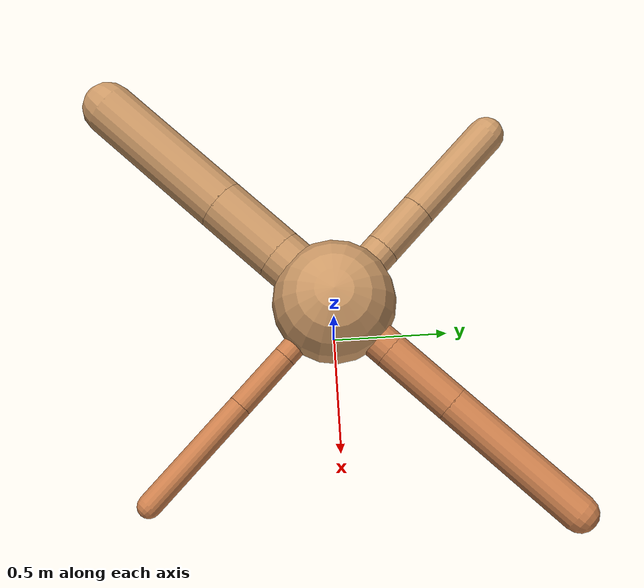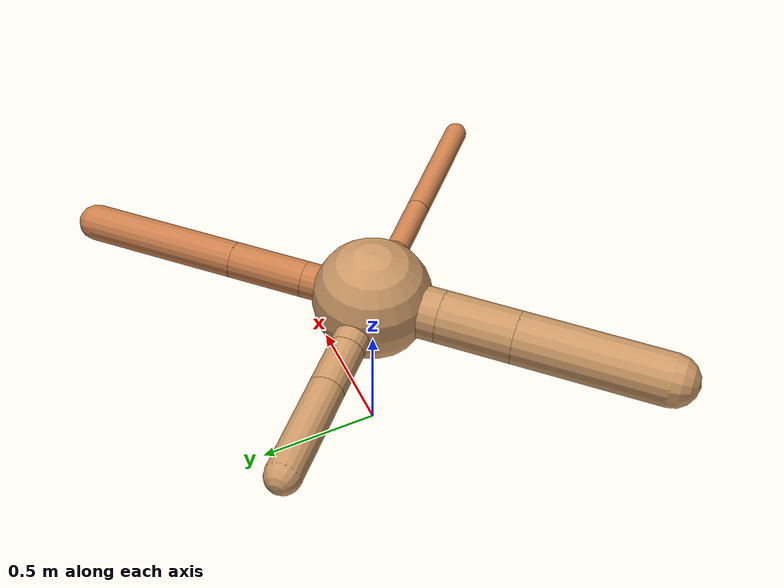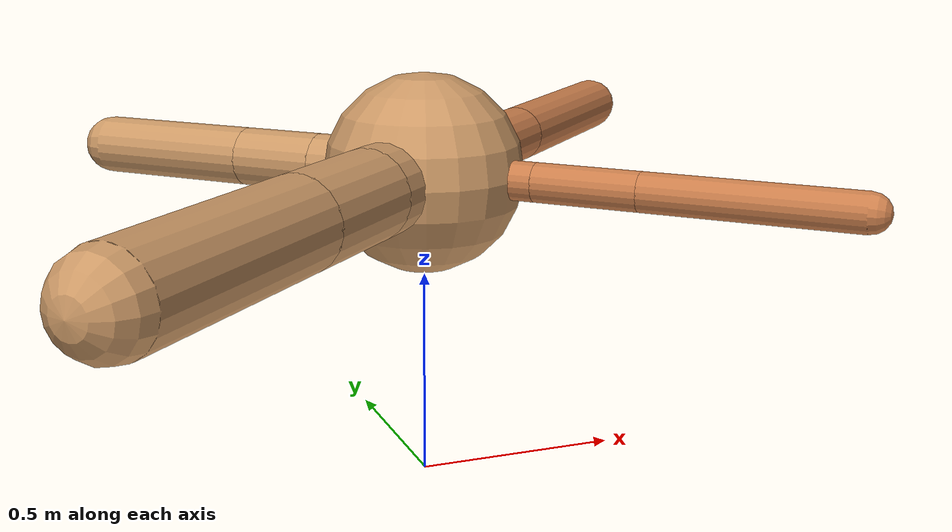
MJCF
<?xml version="1.0" ?>
<mujoco model="ant">

	<compiler angle="degree" coordinate="local" inertiafromgeom="true"/>

	<option integrator="RK4" timestep="0.01"/>

	<custom>

		<numeric data="0.0 0.0 0.55 1.0 0.0 0.0 0.0 0.0 1.0 0.0 -1.0 0.0 -1.0 0.0 1.0" name="init_qpos"/>

	</custom>

	<default>

		<joint armature="1" damping="1" limited="true"/>

		<geom conaffinity="0" condim="3" density="5.0" friction="1.5 0.1 0.1" margin="0.01" rgba="0.8 0.6 0.4 1"/>

	</default>

	<worldbody>

		<body name="torso" pos="0 0 0.75">

			<geom name="torso_geom" pos="0 0 0" size="0.2377470160336432" type="sphere"/>

			<!--joint armature="0" damping="0" limited="false" margin="0.01" name="root" pos="0 0 0" type="free"/-->

			<body name="front_left_leg" pos="0 0 0">

				<geom fromto="0 0 0 0.2 0.2 0" name="aux_1_geom" size="0.0727751333329185" type="capsule" rgba=".8 .5 .3 1"/>

				<body name="aux_1" pos="0.2 0.2 0">

					<joint axis="0 0 1" name="hip_1" pos="0.0 0.0 0.0" range="-40 40" type="hinge"/>

					<geom fromto="0 0 0 0.21559864287535688 0.21559864287535688 0" name="left_leg_geom" size="0.0727751333329185" type="capsule" rgba=".8 .5 .3 1"/>

					<body pos="0.21559864287535688 0.21559864287535688 0" name="front_left_foot">

						<joint axis="-1 1 0" name="ankle_1" pos="0.0 0.0 0.0" range="30 100" type="hinge"/>

						<geom fromto="0 0 0 0.43119728575071375 0.43119728575071375 0" name="left_ankle_geom" size="0.0727751333329185" type="capsule" rgba=".8 .5 .3 1"/>

					</body>

				</body>

			</body>

			<body name="front_right_leg" pos="0 0 0">

				<geom fromto="0 0 0 -0.2 0.2 0" name="aux_2_geom" size="0.07154463237313506" type="capsule"/>

				<body name="aux_2" pos="-0.2 0.2 0">

					<joint axis="0 0 1" name="hip_2" pos="0.0 0.0 0.0" range="-40 40" type="hinge"/>

					<geom fromto="0 0 0 -0.14558661022451017 0.14558661022451017 0" name="right_leg_geom" size="0.07154463237313506" type="capsule"/>

					<body pos="-0.14558661022451017 0.14558661022451017 0" name="front_right_foot">

						<joint axis="1 1 0" name="ankle_2" pos="0.0 0.0 0.0" range="-100 -30" type="hinge"/>

						<geom fromto="0 0 0 -0.29117322044902033 0.29117322044902033 0" name="right_ankle_geom" size="0.07154463237313506" type="capsule"/>

					</body>

				</body>

			</body>

			<body name="left_back_leg" pos="0 0 0">

				<geom fromto="0 0 0 -0.2 -0.2 0" name="aux_3_geom" size="0.10520908268557651" type="capsule"/>

				<body name="aux_3" pos="-0.2 -0.2 0">

					<joint axis="0 0 1" name="hip_3" pos="0.0 0.0 0.0" range="-40 40" type="hinge"/>

					<geom fromto="0 0 0 -0.21354523487066454 -0.21354523487066454 0" name="back_leg_geom" size="0.10520908268557651" type="capsule"/>

					<body pos="-0.21354523487066454 -0.21354523487066454 0" name="left_back_foot">

						<joint axis="-1 1 0" name="ankle_3" pos="0.0 0.0 0.0" range="-100 -30" type="hinge"/>

						<geom fromto="0 0 0 -0.4270904697413291 -0.4270904697413291 0" name="third_ankle_geom" size="0.10520908268557651" type="capsule"/>

					</body>

				</body>

			</body>

			<body name="right_back_leg" pos="0 0 0">

				<geom fromto="0 0 0 0.2 -0.2 0" name="aux_4_geom" size="0.046136689171049856" type="capsule" rgba=".8 .5 .3 1"/>

				<body name="aux_4" pos="0.2 -0.2 0">

					<joint axis="0 0 1" name="hip_4" pos="0.0 0.0 0.0" range="-40 40" type="hinge"/>

					<geom fromto="0 0 0 0.17451057640858642 -0.17451057640858642 0" name="rightback_leg_geom" size="0.046136689171049856" type="capsule" rgba=".8 .5 .3 1"/>

					<body pos="0.17451057640858642 -0.17451057640858642 0" name="right_back_foot">

						<joint axis="1 1 0" name="ankle_4" pos="0.0 0.0 0.0" range="30 100" type="hinge"/>

						<geom fromto="0 0 0 0.34902115281717283 -0.34902115281717283 0" name="fourth_ankle_geom" size="0.046136689171049856" type="capsule" rgba=".8 .5 .3 1"/>

					</body>

				</body>

			</body>

		</body>

	</worldbody>

	<actuator>

		<motor ctrllimited="true" ctrlrange="-1.0 1.0" joint="hip_4" gear="150"/>

		<motor ctrllimited="true" ctrlrange="-1.0 1.0" joint="ankle_4" gear="150"/>

		<motor ctrllimited="true" ctrlrange="-1.0 1.0" joint="hip_1" gear="150"/>

		<motor ctrllimited="true" ctrlrange="-1.0 1.0" joint="ankle_1" gear="150"/>

		<motor ctrllimited="true" ctrlrange="-1.0 1.0" joint="hip_2" gear="150"/>

		<motor ctrllimited="true" ctrlrange="-1.0 1.0" joint="ankle_2" gear="150"/>

		<motor ctrllimited="true" ctrlrange="-1.0 1.0" joint="hip_3" gear="150"/>

		<motor ctrllimited="true" ctrlrange="-1.0 1.0" joint="ankle_3" gear="150"/>

	</actuator>

</mujoco>
